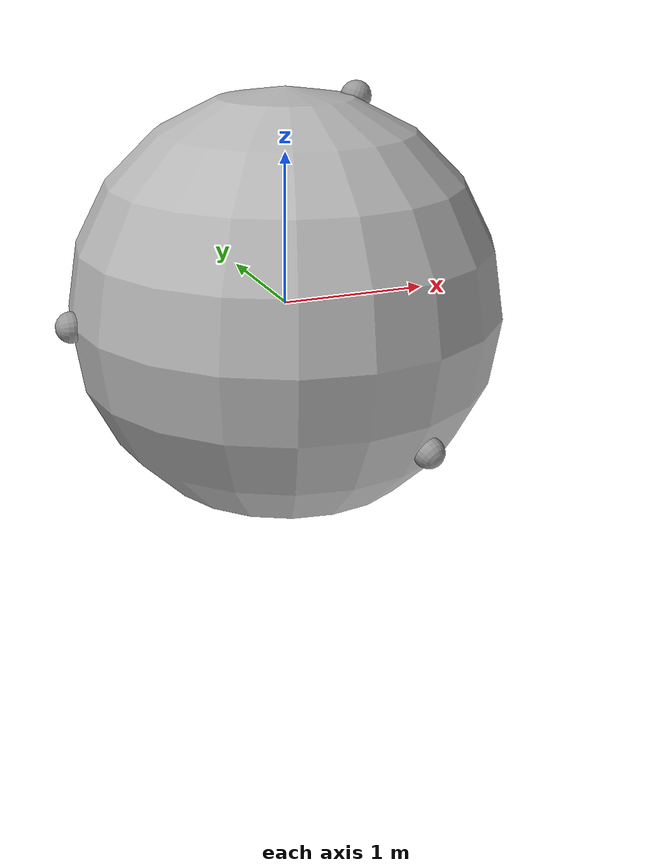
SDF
<?xml version='1.0'?>
<sdf version='1.5'>
<model name="skye">

  <!-- We want Skye to be movable, set static element to false -->
  <static>false</static>
  <pose>0 0 0 0 0 0</pose>

  <!-- WARNING: the postion of each link has been expressed using
  the world frame of Gazebo, and NOT the NED frame in the center
  of gravity of skye.  -->

  <!-- ============================== Hull ======================= -->
  <link name='hull'>

    <!-- This is the main 3D-sphere which forms the hull of Skye -->

    <!-- Rotate the main sphere to have the body frame as the real system:
    X pointing forward, Y pointing right, Z poiting down -->
    <pose>0 0 0 3.14159265358979323846264338 0 0</pose>

    <must_be_base_link>true</must_be_base_link>

    <inertial>
    <mass>17.990569092</mass>
    <inertia>
    <ixx>10</ixx>
    <ixy>0</ixy>
    <ixz>0</ixz>
    <iyy>10</iyy>
    <iyz>0</iyz>
    <izz>10</izz>
    </inertia>
    </inertial>

    <visual name='visual'>
    <geometry>
    <sphere>
    <radius>1.42</radius>
    </sphere>
    </geometry>
    </visual>

    <collision name='collision'>
    <geometry>
    <sphere>
    <radius>1.42</radius>
    </sphere>
    </geometry>
    </collision>

  </link>

  <!-- ==================== Wrench Plugin on Hull ======== -->
  <plugin name="hull_wrench_plugin" filename="libskye_gazebo_wrench_plugin.so">
  <!-- Names of allowed target links, specified in sdf parameters -->
  <linkName>hull</linkName>
  </plugin>

  <!-- ============================== AU 1 ======================= -->
  <link name="au_1">

    <pose>0.485710625036042 1.15557534754777 -0.667181238395503 1.0737049437 -0.1718547514 -0.3053495546</pose>

    <inertial>
    <mass>0.00418879020478639</mass>
    <inertia>
    <ixx>0.00001</ixx>
    <ixy>0</ixy>
    <ixz>0</ixz>
    <iyy>0.00001</iyy>
    <iyz>0</iyz>
    <izz>0.00001</izz>
    </inertia>
    </inertial>

    <visual name='visual'>
    <geometry>
    <sphere>
    <radius>0.1</radius>
    </sphere>
    </geometry>
    <material>
    <lighting>1</lighting>
    <script>
    <uri>file://media/materials/scripts/gazebo.material</uri>
    <name>Gazebo/Grey</name>
    </script>
    <shader type='pixel'>
    <normal_map>__default__</normal_map>
    </shader>
    <ambient>0 0 0 1</ambient>
    <diffuse>0 0 0 1</diffuse>
    <specular>0 0 0 1</specular>
    <emissive>0 0 0 1</emissive>
    </material>
    </visual>

    <collision name='collision'>
    <geometry>
    <sphere>
    <radius>0.1</radius>
    </sphere>
    </geometry>
    </collision>

  </link>

  <joint name='au1_joint' type='fixed'>
    <parent>hull</parent>
    <child>au_1</child>
    <axis>
    <xyz>0 0 1</xyz>
    </axis>
  </joint>

  <!-- ==================== Wrench Plugin on AU1 ======== -->
  <plugin name="au_1_plugin" filename="libskye_gazebo_au_plugin.so">
    <!-- Names of allowed target links, specified in sdf parameters -->
    <linkName>au_1</linkName>
    <!-- First order filter matrices for thrust orientation -->
    <A_orientation>
    <elem_11> 1.0 </elem_11>
    </A_orientation>
    <B_orientation>
    <elem_11> 1.0 </elem_11>
    </B_orientation>
    <!-- Second order filter matrices for thrust amount -->
    <A_thrust>
    <elem_11> 1.0 </elem_11>  <elem_12> 0.0 </elem_12>
    <elem_21> 0.0 </elem_21>  <elem_22> 1.0 </elem_22>
    </A_thrust>
    <B_thrust>
    <elem_11> 1.0 </elem_11>
    <elem_21> 1.0 </elem_21>
    </B_thrust>
  </plugin>

  <!-- ============================== AU 2 ======================= -->
  <link name="au_2">

    <pose>0.485710625036042 -1.15557534754777 -0.667181238395503 -1.0737049437 -0.1718547514 0.3053495546</pose>

    <inertial>
    <mass>0.00418879020478639</mass>
    <inertia>
    <ixx>0.00001</ixx>
    <ixy>0</ixy>
    <ixz>0</ixz>
    <iyy>0.00001</iyy>
    <iyz>0</iyz>
    <izz>0.00001</izz>
    </inertia>
    </inertial>

    <visual name='visual'>
    <geometry>
    <sphere>
    <radius>0.1</radius>
    </sphere>
    </geometry>
    <material>
    <lighting>1</lighting>
    <script>
    <uri>file://media/materials/scripts/gazebo.material</uri>
    <name>Gazebo/Grey</name>
    </script>
    <shader type='pixel'>
    <normal_map>__default__</normal_map>
    </shader>
    <ambient>0 0 0 1</ambient>
    <diffuse>0 0 0 1</diffuse>
    <specular>0 0 0 1</specular>
    <emissive>0 0 0 1</emissive>
    </material>
    </visual>

    <collision name='collision'>
    <geometry>
    <sphere>
    <radius>0.1</radius>
    </sphere>
    </geometry>
    </collision>

  </link>

  <joint name='au2_joint' type='fixed'>
    <parent>hull</parent>
    <child>au_2</child>
    <axis>
    <xyz>0 0 1</xyz>
    </axis>
  </joint>

  <!-- ==================== Wrench Plugin on AU2 ======== -->
    <plugin name="au_2_plugin" filename="libskye_gazebo_au_plugin.so">
    <!-- Names of allowed target links, specified in sdf parameters -->
    <linkName>au_2</linkName>
    <!-- First order filter matrices for thrust orientation -->
    <A_orientation>
    <elem_11> 1.0 </elem_11>
    </A_orientation>
    <B_orientation>
    <elem_11> 1.0 </elem_11>
    </B_orientation>
    <!-- Second order filter matrices for thrust amount -->
    <A_thrust>
    <elem_11> 1.0 </elem_11>  <elem_12> 0.0 </elem_12>
    <elem_21> 0.0 </elem_21>  <elem_22> 1.0 </elem_22>
    </A_thrust>
    <B_thrust>
    <elem_11> 1.0 </elem_11>
    <elem_21> 1.0 </elem_21>
    </B_thrust>
  </plugin>

  <!-- ============================== AU 3 ======================= -->
  <link name="au_3">

    <pose>0.4857060446766 0 1.33434989345547 -3.1415926425 0.3490658505 0.0000000019</pose>

    <inertial>
    <mass>0.00418879020478639</mass>
    <inertia>
    <ixx>0.00001</ixx>
    <ixy>0</ixy>
    <ixz>0</ixz>
    <iyy>0.00001</iyy>
    <iyz>0</iyz>
    <izz>0.00001</izz>
    </inertia>
    </inertial>

    <visual name='visual'>
    <geometry>
    <sphere>
    <radius>0.1</radius>
    </sphere>
    </geometry>
    <material>
    <lighting>1</lighting>
    <script>
    <uri>file://media/materials/scripts/gazebo.material</uri>
    <name>Gazebo/Grey</name>
    </script>
    <shader type='pixel'>
    <normal_map>__default__</normal_map>
    </shader>
    <ambient>0 0 0 1</ambient>
    <diffuse>0 0 0 1</diffuse>
    <specular>0 0 0 1</specular>
    <emissive>0 0 0 1</emissive>
    </material>
    </visual>

    <collision name='collision'>
    <geometry>
    <sphere>
    <radius>0.1</radius>
    </sphere>
    </geometry>
    </collision>

  </link>

  <joint name='au3_joint' type='fixed'>
    <parent>hull</parent>
    <child>au_3</child>
    <axis>
    <xyz>0 0 1</xyz>
    </axis>
  </joint>

  <!-- ==================== Wrench Plugin on AU3 ======== -->
  <plugin name="au_3_plugin" filename="libskye_gazebo_au_plugin.so">
    <!-- Names of allowed target links, specified in sdf parameters -->
    <linkName>au_3</linkName>
    <!-- First order filter matrices for thrust orientation -->
    <A_orientation>
    <elem_11> 1.0 </elem_11>
    </A_orientation>
    <B_orientation>
    <elem_11> 1.0 </elem_11>
    </B_orientation>
    <!-- Second order filter matrices for thrust amount -->
    <A_thrust>
    <elem_11> 1.0 </elem_11>  <elem_12> 0.0 </elem_12>
    <elem_21> 0.0 </elem_21>  <elem_22> 1.0 </elem_22>
    </A_thrust>
    <B_thrust>
    <elem_11> 1.0 </elem_11>
    <elem_21> 1.0 </elem_21>
    </B_thrust>
  </plugin>

  <!-- ============================== AU 4 ======================= -->
  <link name="au_4">

    <pose>-1.42 0 0 -3.1415926536 -1.5707963268 0</pose>
    <inertial>
    <mass>0.00418879020478639</mass>
    <inertia>
    <ixx>0.00001</ixx>
    <ixy>0</ixy>
    <ixz>0</ixz>
    <iyy>0.00001</iyy>
    <iyz>0</iyz>
    <izz>0.00001</izz>
    </inertia>
    </inertial>

    <visual name='visual'>
    <geometry>
    <sphere>
    <radius>0.1</radius>
    </sphere>
    </geometry>
    <material>
    <lighting>1</lighting>
    <script>
    <uri>file://media/materials/scripts/gazebo.material</uri>
    <name>Gazebo/Grey</name>
    </script>
    <shader type='pixel'>
    <normal_map>__default__</normal_map>
    </shader>
    <ambient>0 0 0 1</ambient>
    <diffuse>0 0 0 1</diffuse>
    <specular>0 0 0 1</specular>
    <emissive>0 0 0 1</emissive>
    </material>
    </visual>

    <collision name='collision'>
    <geometry>
    <sphere>
    <radius>0.1</radius>
    </sphere>
    </geometry>
    </collision>

  </link>

  <joint name='au4_joint' type='fixed'>
    <parent>hull</parent>
    <child>au_4</child>
    <axis>
    <xyz>0 0 1</xyz>
    </axis>
  </joint>

  <!-- ==================== Wrench Plugin on AU4 ======== -->
  <plugin name="au_4_plugin" filename="libskye_gazebo_au_plugin.so">
    <!-- Names of allowed target links, specified in sdf parameters -->
    <linkName>au_4</linkName>
    <!-- First order filter matrices for thrust orientation -->
    <A_orientation>
    <elem_11> 1.0 </elem_11>
    </A_orientation>
    <B_orientation>
    <elem_11> 1.0 </elem_11>
    </B_orientation>
    <!-- Second order filter matrices for thrust amount -->
    <A_thrust>
    <elem_11> 1.0 </elem_11>  <elem_12> 0.0 </elem_12>
    <elem_21> 0.0 </elem_21>  <elem_22> 1.0 </elem_22>
    </A_thrust>
    <B_thrust>
    <elem_11> 1.0 </elem_11>
    <elem_21> 1.0 </elem_21>
    </B_thrust>
  </plugin>

  <!-- ============================== IMU ======================= -->
  <link name="imu">

    <!-- Rotate the IMU link to have the sensor frame as the real system:
    X pointing forward, Y pointing right, Z poiting down -->
    <pose>1.445 0 0 3.14159265358979323846264338 0 0</pose> <!-- x = skye_ray + box_size_x/2 -->

    <inertial>
    <mass>0.0005</mass>
        <inertia>
        <ixx>0.000001</ixx>
        <ixy>0</ixy>
        <ixz>0</ixz>
        <iyy>0.000001</iyy>
        <iyz>0</iyz>
        <izz>0.000001</izz>
        </inertia>
    </inertial>

    <visual name="visual">
    <geometry>
    <box>
    <size>0.05 0.1 0.1</size>
    </box>
    </geometry>
    <material>
    <lighting>1</lighting>
    <script>
    <uri>file://media/materials/scripts/gazebo.material</uri>
    <name>Gazebo/Grey</name>
    </script>
    <shader type='pixel'>
    <normal_map>__default__</normal_map>
    </shader>
    <ambient>0.55 0 0 1</ambient>
    <diffuse>0.55 0 0 1</diffuse>
    <specular>0.55 0 0 1</specular>
    <emissive>0.55 0 0 1</emissive>
    </material>
    </visual>

    <collision name="collision">
    <geometry>
    <box>
    <size>0.05 0.1 0.1</size>
    </box>
    </geometry>
    </collision>

  </link>

 <plugin name="hector_imu_sim" filename="libhector_gazebo_ros_imu.so">
   <updateRate>50.0</updateRate>
   <bodyName>imu</bodyName>
   <topicName>/skye_gz/sensor_msgs/imu_sk</topicName>
   <xyzOffset>0 0 0</xyzOffset>
   <rpyOffset>0 0 0</rpyOffset>
   <gaussianNoise>0</gaussianNoise>
   <accelDrift>0.0 0.0 0.0</accelDrift>
   <accelGaussianNoise>0.0 0.0 0.0</accelGaussianNoise>
   <rateDrift>0.0 0.0 0.0</rateDrift>
   <rateGaussianNoise>0.0 0.0 0.0</rateGaussianNoise>
 </plugin>

  <joint name="imu_joint" type="fixed">
    <child>imu</child>
    <parent>hull</parent>
    <axis>
    <xyz>0 0 1</xyz>
    <limit>
    <upper>0</upper>
    <lower>0</lower>
    </limit>
    </axis>
  </joint>

  <!-- ==================== Buoyancy Plugin - available from Gazebo6 ======== -->
  <plugin name="buoyancy" filename="libBuoyancyPlugin.so">
    <fluid_density>1.0</fluid_density>
    <link name="hull">
      <center_of_volume>0 0 0</center_of_volume>
      <volume>17.990569092</volume>
    </link>
  </plugin>

  <!-- ==================== Blimp Aerodynamics Plugin ======== -->
  <plugin name="skye_gazebo_blimp_dynamics_plugin" filename="libskye_gazebo_blimp_dynamics_plugin.so">

    <!-- Aerodynamic surface friction coefficient [-] -->
    <tau>1.0</tau>
    <!-- Aerodynamic drag coefficient [-] -->
    <cd>0.4</cd>
    <!-- Radius of spherical blimp body [m] -->
    <radius>1.42</radius>
    <!-- Density of fluid [kg/m3] -->
    <fluid_density>1</fluid_density>
    <!-- Names of allowed target links, specified in sdf parameters -->
    <linkName>hull</linkName>

  </plugin>

</model>

 <!-- TODO: check model/enable_wind -->
 </sdf>
